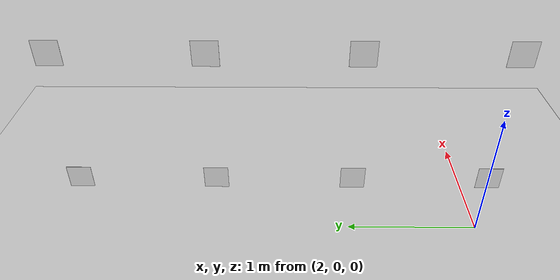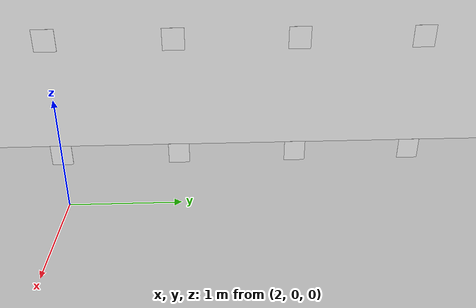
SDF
<?xml version="1.0" ?>
<sdf version="1.9">
  <world name="default">
    <physics name="1ms" type="ignored">
      <max_step_size>0.001</max_step_size>
      <real_time_factor>1.0</real_time_factor>
    </physics>

    <plugin filename="ignition-gazebo-physics-system" name="ignition::gazebo::systems::Physics"/>
    <plugin filename="ignition-gazebo-scene-broadcaster-system" name="ignition::gazebo::systems::SceneBroadcaster"/>
    <plugin filename="ignition-gazebo-user-commands-system" name="ignition::gazebo::systems::UserCommands"/>
    <plugin filename="ignition-gazebo-sensors-system" name="ignition::gazebo::systems::Sensors">
      <render_engine>ogre2</render_engine>
    </plugin>

    <light type="directional" name="sun">
      <cast_shadows>true</cast_shadows>
      <pose>0 0 10 0 0 0</pose>
      <diffuse>0.8 0.8 0.8 1</diffuse>
      <specular>0.2 0.2 0.2 1</specular>
      <direction>-0.5 0.1 -0.9</direction>
    </light>

    <model name="ground_plane">
      <static>true</static>
      <link name="link">
        <collision name="collision">
          <geometry><plane><normal>0 0 1</normal><size>100 100</size></plane></geometry>
        </collision>
        <visual name="visual">
          <geometry><plane><normal>0 0 1</normal><size>100 100</size></plane></geometry>
          <material>
            <ambient>0.8 0.8 0.8 1</ambient>
            <diffuse>0.8 0.8 0.8 1</diffuse>
            <specular>0.8 0.8 0.8 1</specular>
          </material>
        </visual>
      </link>
    </model>

    <!-- ArUco markers -->
    <model name="marker0">
      <include>
        <static>true</static>
        <uri>model://marker_0</uri>
      </include>
      <pose>2 0 0.5 0 -1.5707963267948966 0</pose>
    </model>
    <model name="marker1">
      <include>
        <static>true</static>
        <uri>model://marker_1</uri>
      </include>
      <pose>2 1 0.5 0 -1.5707963267948966 0</pose>
    </model>
    <model name="marker2">
      <include>
        <static>true</static>
        <uri>model://marker_2</uri>
      </include>
      <pose>2 2 0.5 0 -1.5707963267948966 0</pose>
    </model>
    <model name="marker3">
      <include>
        <static>true</static>
        <uri>model://marker_3</uri>
      </include>
      <pose>2 3 0.5 0 -1.5707963267948966 0</pose>
    </model>
    <model name="marker4">
      <include>
        <static>true</static>
        <uri>model://marker_4</uri>
      </include>
      <pose>2 0 1.5 0 -1.5707963267948966 0</pose>
    </model>
    <model name="marker5">
      <include>
        <static>true</static>
        <uri>model://marker_5</uri>
      </include>
      <pose>2 1 1.5 0 -1.5707963267948966 0</pose>
    </model>
    <model name="marker6">
      <include>
        <static>true</static>
        <uri>model://marker_6</uri>
      </include>
      <pose>2 2 1.5 0 -1.5707963267948966 0</pose>
    </model>
    <model name="marker7">
      <include>
        <static>true</static>
        <uri>model://marker_7</uri>
      </include>
      <pose>2 3 1.5 0 -1.5707963267948966 0</pose>
    </model>

  </world>
</sdf>

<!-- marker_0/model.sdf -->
<sdf version='1.5'>
  <model name='marker_0'>

    <link name='marker'>
      <pose frame=''>0 0 0 0 0 0</pose>
      <visual name='visual'>
        <geometry>
          <box>
            <size>0.1778 0.1778 1e-5</size>
          </box>
        </geometry>
        <material>
          <diffuse>1 1 1 1</diffuse><pbr><metal><albedo_map>model://marker_0/materials/textures/aruco_mark_0.png</albedo_map></metal></pbr>
          <ambient>1 1 1 1</ambient>
          <diffuse>1 1 1 1</diffuse>
          <specular>0 0 0 1</specular>
          <emissive>1 1 1 0</emissive>
          <shader type='vertex'>
            <normal_map>__default__</normal_map>
          </shader>
        </material>
        <pose frame=''>0 0 0 0 0 0</pose>
        <cast_shadows>1</cast_shadows>
        <transparency>0</transparency>
      </visual>
      <collision name='collision'>
        <laser_retro>0</laser_retro>
        <max_contacts>10</max_contacts>
        <pose frame=''>0 0 0 0 0 0</pose>
        <geometry>
          <box>
            <size>0.1778 0.1778 1e-05</size>
          </box>
        </geometry>
      </collision>
    </link>

    <link name='marker_pad'>
      <pose frame='marker'>0 0 -1e-3 0 0 0</pose>
      <visual name='visual'>
        <geometry>
          <box>
            <size>0.1778 0.1778 1e-5</size>
          </box>
        </geometry>
        <material>
          <lighting>1</lighting>
          <diffuse>1 1 1 1</diffuse><pbr><metal><albedo_map>model://marker_0/materials/textures/aruco_mark_0.png</albedo_map></metal></pbr>
          <ambient>0.3 0.3 0.3 1</ambient>
          <diffuse>0.7 0.7 0.7 1</diffuse>
          <specular>0.01 0.01 0.01 1</specular>
          <emissive>1 1 1 0</emissive>
          <shader type='vertex'>
            <normal_map>__default__</normal_map>
          </shader>
        </material>
        <cast_shadows>1</cast_shadows>
        <transparency>0</transparency>
      </visual>
      <collision name='collision'>
        <laser_retro>0</laser_retro>
        <max_contacts>10</max_contacts>
        <pose frame=''>0 0 0 0 0 0</pose>
        <geometry>
          <box>
            <size>0.1778 0.1778 1e-5</size>
          </box>
        </geometry>
      </collision>
    </link>

    <joint name='marker_JOINT_marker_pad' type='revolute'>
      <parent>marker</parent>
      <child>marker_pad</child>
      <pose frame=''>0 0 0 0 0 0</pose>
      <axis>
        <xyz>0 0 1</xyz>
        <limit>
          <upper>0</upper>
          <lower>0</lower>
        </limit>
      </axis>
    </joint>

    <static>1</static>
    <allow_auto_disable>1</allow_auto_disable>

  </model>
</sdf>

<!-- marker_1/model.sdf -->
<sdf version='1.5'>
  <model name='marker_1'>

    <link name='marker'>
      <pose frame=''>0 0 0 0 0 0</pose>
      <visual name='visual'>
        <geometry>
          <box>
            <size>0.1778 0.1778 1e-5</size>
          </box>
        </geometry>
        <material>
          <diffuse>1 1 1 1</diffuse><pbr><metal><albedo_map>model://marker_1/materials/textures/aruco_mark_1.png</albedo_map></metal></pbr>
          <ambient>1 1 1 1</ambient>
          <diffuse>1 1 1 1</diffuse>
          <specular>0 0 0 1</specular>
          <emissive>1 1 1 0</emissive>
          <shader type='vertex'>
            <normal_map>__default__</normal_map>
          </shader>
        </material>
        <pose frame=''>0 0 0 0 0 0</pose>
        <cast_shadows>1</cast_shadows>
        <transparency>0</transparency>
      </visual>
      <collision name='collision'>
        <laser_retro>0</laser_retro>
        <max_contacts>10</max_contacts>
        <pose frame=''>0 0 0 0 0 0</pose>
        <geometry>
          <box>
            <size>0.1778 0.1778 1e-05</size>
          </box>
        </geometry>
      </collision>
    </link>

    <link name='marker_pad'>
      <pose frame='marker'>0 0 -1e-3 0 0 0</pose>
      <visual name='visual'>
        <geometry>
          <box>
            <size>0.1778 0.1778 1e-5</size>
          </box>
        </geometry>
        <material>
          <lighting>1</lighting>
          <diffuse>1 1 1 1</diffuse><pbr><metal><albedo_map>model://marker_1/materials/textures/aruco_mark_1.png</albedo_map></metal></pbr>
          <ambient>0.3 0.3 0.3 1</ambient>
          <diffuse>0.7 0.7 0.7 1</diffuse>
          <specular>0.01 0.01 0.01 1</specular>
          <emissive>1 1 1 0</emissive>
          <shader type='vertex'>
            <normal_map>__default__</normal_map>
          </shader>
        </material>
        <cast_shadows>1</cast_shadows>
        <transparency>0</transparency>
      </visual>
      <collision name='collision'>
        <laser_retro>0</laser_retro>
        <max_contacts>10</max_contacts>
        <pose frame=''>0 0 0 0 0 0</pose>
        <geometry>
          <box>
            <size>0.1778 0.1778 1e-5</size>
          </box>
        </geometry>
      </collision>
    </link>

    <joint name='marker_JOINT_marker_pad' type='revolute'>
      <parent>marker</parent>
      <child>marker_pad</child>
      <pose frame=''>0 0 0 0 0 0</pose>
      <axis>
        <xyz>0 0 1</xyz>
        <limit>
          <upper>0</upper>
          <lower>0</lower>
        </limit>
      </axis>
    </joint>

    <static>1</static>
    <allow_auto_disable>1</allow_auto_disable>

  </model>
</sdf>

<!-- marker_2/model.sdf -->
<sdf version='1.5'>
  <model name='marker_2'>

    <link name='marker'>
      <pose frame=''>0 0 0 0 0 0</pose>
      <visual name='visual'>
        <geometry>
          <box>
            <size>0.1778 0.1778 1e-5</size>
          </box>
        </geometry>
        <material>
          <diffuse>1 1 1 1</diffuse><pbr><metal><albedo_map>model://marker_2/materials/textures/aruco_mark_2.png</albedo_map></metal></pbr>
          <ambient>1 1 1 1</ambient>
          <diffuse>1 1 1 1</diffuse>
          <specular>0 0 0 1</specular>
          <emissive>1 1 1 0</emissive>
          <shader type='vertex'>
            <normal_map>__default__</normal_map>
          </shader>
        </material>
        <pose frame=''>0 0 0 0 0 0</pose>
        <cast_shadows>1</cast_shadows>
        <transparency>0</transparency>
      </visual>
      <collision name='collision'>
        <laser_retro>0</laser_retro>
        <max_contacts>10</max_contacts>
        <pose frame=''>0 0 0 0 0 0</pose>
        <geometry>
          <box>
            <size>0.1778 0.1778 1e-05</size>
          </box>
        </geometry>
      </collision>
    </link>

    <link name='marker_pad'>
      <pose frame='marker'>0 0 -1e-3 0 0 0</pose>
      <visual name='visual'>
        <geometry>
          <box>
            <size>0.1778 0.1778 1e-5</size>
          </box>
        </geometry>
        <material>
          <lighting>1</lighting>
          <diffuse>1 1 1 1</diffuse><pbr><metal><albedo_map>model://marker_2/materials/textures/aruco_mark_2.png</albedo_map></metal></pbr>
          <ambient>0.3 0.3 0.3 1</ambient>
          <diffuse>0.7 0.7 0.7 1</diffuse>
          <specular>0.01 0.01 0.01 1</specular>
          <emissive>1 1 1 0</emissive>
          <shader type='vertex'>
            <normal_map>__default__</normal_map>
          </shader>
        </material>
        <cast_shadows>1</cast_shadows>
        <transparency>0</transparency>
      </visual>
      <collision name='collision'>
        <laser_retro>0</laser_retro>
        <max_contacts>10</max_contacts>
        <pose frame=''>0 0 0 0 0 0</pose>
        <geometry>
          <box>
            <size>0.1778 0.1778 1e-5</size>
          </box>
        </geometry>
      </collision>
    </link>

    <joint name='marker_JOINT_marker_pad' type='revolute'>
      <parent>marker</parent>
      <child>marker_pad</child>
      <pose frame=''>0 0 0 0 0 0</pose>
      <axis>
        <xyz>0 0 1</xyz>
        <limit>
          <upper>0</upper>
          <lower>0</lower>
        </limit>
      </axis>
    </joint>

    <static>1</static>
    <allow_auto_disable>1</allow_auto_disable>

  </model>
</sdf>

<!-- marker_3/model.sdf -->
<sdf version='1.5'>
  <model name='marker_3'>

    <link name='marker'>
      <pose frame=''>0 0 0 0 0 0</pose>
      <visual name='visual'>
        <geometry>
          <box>
            <size>0.1778 0.1778 1e-5</size>
          </box>
        </geometry>
        <material>
          <diffuse>1 1 1 1</diffuse><pbr><metal><albedo_map>model://marker_3/materials/textures/aruco_mark_3.png</albedo_map></metal></pbr>
          <ambient>1 1 1 1</ambient>
          <diffuse>1 1 1 1</diffuse>
          <specular>0 0 0 1</specular>
          <emissive>1 1 1 0</emissive>
          <shader type='vertex'>
            <normal_map>__default__</normal_map>
          </shader>
        </material>
        <pose frame=''>0 0 0 0 0 0</pose>
        <cast_shadows>1</cast_shadows>
        <transparency>0</transparency>
      </visual>
      <collision name='collision'>
        <laser_retro>0</laser_retro>
        <max_contacts>10</max_contacts>
        <pose frame=''>0 0 0 0 0 0</pose>
        <geometry>
          <box>
            <size>0.1778 0.1778 1e-05</size>
          </box>
        </geometry>
      </collision>
    </link>

    <link name='marker_pad'>
      <pose frame='marker'>0 0 -1e-3 0 0 0</pose>
      <visual name='visual'>
        <geometry>
          <box>
            <size>0.1778 0.1778 1e-5</size>
          </box>
        </geometry>
        <material>
          <lighting>1</lighting>
          <diffuse>1 1 1 1</diffuse><pbr><metal><albedo_map>model://marker_3/materials/textures/aruco_mark_3.png</albedo_map></metal></pbr>
          <ambient>0.3 0.3 0.3 1</ambient>
          <diffuse>0.7 0.7 0.7 1</diffuse>
          <specular>0.01 0.01 0.01 1</specular>
          <emissive>1 1 1 0</emissive>
          <shader type='vertex'>
            <normal_map>__default__</normal_map>
          </shader>
        </material>
        <cast_shadows>1</cast_shadows>
        <transparency>0</transparency>
      </visual>
      <collision name='collision'>
        <laser_retro>0</laser_retro>
        <max_contacts>10</max_contacts>
        <pose frame=''>0 0 0 0 0 0</pose>
        <geometry>
          <box>
            <size>0.1778 0.1778 1e-5</size>
          </box>
        </geometry>
      </collision>
    </link>

    <joint name='marker_JOINT_marker_pad' type='revolute'>
      <parent>marker</parent>
      <child>marker_pad</child>
      <pose frame=''>0 0 0 0 0 0</pose>
      <axis>
        <xyz>0 0 1</xyz>
        <limit>
          <upper>0</upper>
          <lower>0</lower>
        </limit>
      </axis>
    </joint>

    <static>1</static>
    <allow_auto_disable>1</allow_auto_disable>

  </model>
</sdf>

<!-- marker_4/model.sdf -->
<sdf version='1.5'>
  <model name='marker_4'>

    <link name='marker'>
      <pose frame=''>0 0 0 0 0 0</pose>
      <visual name='visual'>
        <geometry>
          <box>
            <size>0.1778 0.1778 1e-5</size>
          </box>
        </geometry>
        <material>
          <diffuse>1 1 1 1</diffuse><pbr><metal><albedo_map>model://marker_4/materials/textures/aruco_mark_4.png</albedo_map></metal></pbr>
          <ambient>1 1 1 1</ambient>
          <diffuse>1 1 1 1</diffuse>
          <specular>0 0 0 1</specular>
          <emissive>1 1 1 0</emissive>
          <shader type='vertex'>
            <normal_map>__default__</normal_map>
          </shader>
        </material>
        <pose frame=''>0 0 0 0 0 0</pose>
        <cast_shadows>1</cast_shadows>
        <transparency>0</transparency>
      </visual>
      <collision name='collision'>
        <laser_retro>0</laser_retro>
        <max_contacts>10</max_contacts>
        <pose frame=''>0 0 0 0 0 0</pose>
        <geometry>
          <box>
            <size>0.1778 0.1778 1e-05</size>
          </box>
        </geometry>
      </collision>
    </link>

    <link name='marker_pad'>
      <pose frame='marker'>0 0 -1e-3 0 0 0</pose>
      <visual name='visual'>
        <geometry>
          <box>
            <size>0.1778 0.1778 1e-5</size>
          </box>
        </geometry>
        <material>
          <lighting>1</lighting>
          <diffuse>1 1 1 1</diffuse><pbr><metal><albedo_map>model://marker_4/materials/textures/aruco_mark_4.png</albedo_map></metal></pbr>
          <ambient>0.3 0.3 0.3 1</ambient>
          <diffuse>0.7 0.7 0.7 1</diffuse>
          <specular>0.01 0.01 0.01 1</specular>
          <emissive>1 1 1 0</emissive>
          <shader type='vertex'>
            <normal_map>__default__</normal_map>
          </shader>
        </material>
        <cast_shadows>1</cast_shadows>
        <transparency>0</transparency>
      </visual>
      <collision name='collision'>
        <laser_retro>0</laser_retro>
        <max_contacts>10</max_contacts>
        <pose frame=''>0 0 0 0 0 0</pose>
        <geometry>
          <box>
            <size>0.1778 0.1778 1e-5</size>
          </box>
        </geometry>
      </collision>
    </link>

    <joint name='marker_JOINT_marker_pad' type='revolute'>
      <parent>marker</parent>
      <child>marker_pad</child>
      <pose frame=''>0 0 0 0 0 0</pose>
      <axis>
        <xyz>0 0 1</xyz>
        <limit>
          <upper>0</upper>
          <lower>0</lower>
        </limit>
      </axis>
    </joint>

    <static>1</static>
    <allow_auto_disable>1</allow_auto_disable>

  </model>
</sdf>

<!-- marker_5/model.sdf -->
<sdf version='1.5'>
  <model name='marker_5'>

    <link name='marker'>
      <pose frame=''>0 0 0 0 0 0</pose>
      <visual name='visual'>
        <geometry>
          <box>
            <size>0.1778 0.1778 1e-5</size>
          </box>
        </geometry>
        <material>
          <diffuse>1 1 1 1</diffuse><pbr><metal><albedo_map>model://marker_5/materials/textures/aruco_mark_5.png</albedo_map></metal></pbr>
          <ambient>1 1 1 1</ambient>
          <diffuse>1 1 1 1</diffuse>
          <specular>0 0 0 1</specular>
          <emissive>1 1 1 0</emissive>
          <shader type='vertex'>
            <normal_map>__default__</normal_map>
          </shader>
        </material>
        <pose frame=''>0 0 0 0 0 0</pose>
        <cast_shadows>1</cast_shadows>
        <transparency>0</transparency>
      </visual>
      <collision name='collision'>
        <laser_retro>0</laser_retro>
        <max_contacts>10</max_contacts>
        <pose frame=''>0 0 0 0 0 0</pose>
        <geometry>
          <box>
            <size>0.1778 0.1778 1e-05</size>
          </box>
        </geometry>
      </collision>
    </link>

    <link name='marker_pad'>
      <pose frame='marker'>0 0 -1e-3 0 0 0</pose>
      <visual name='visual'>
        <geometry>
          <box>
            <size>0.1778 0.1778 1e-5</size>
          </box>
        </geometry>
        <material>
          <lighting>1</lighting>
          <diffuse>1 1 1 1</diffuse><pbr><metal><albedo_map>model://marker_5/materials/textures/aruco_mark_5.png</albedo_map></metal></pbr>
          <ambient>0.3 0.3 0.3 1</ambient>
          <diffuse>0.7 0.7 0.7 1</diffuse>
          <specular>0.01 0.01 0.01 1</specular>
          <emissive>1 1 1 0</emissive>
          <shader type='vertex'>
            <normal_map>__default__</normal_map>
          </shader>
        </material>
        <cast_shadows>1</cast_shadows>
        <transparency>0</transparency>
      </visual>
      <collision name='collision'>
        <laser_retro>0</laser_retro>
        <max_contacts>10</max_contacts>
        <pose frame=''>0 0 0 0 0 0</pose>
        <geometry>
          <box>
            <size>0.1778 0.1778 1e-5</size>
          </box>
        </geometry>
      </collision>
    </link>

    <joint name='marker_JOINT_marker_pad' type='revolute'>
      <parent>marker</parent>
      <child>marker_pad</child>
      <pose frame=''>0 0 0 0 0 0</pose>
      <axis>
        <xyz>0 0 1</xyz>
        <limit>
          <upper>0</upper>
          <lower>0</lower>
        </limit>
      </axis>
    </joint>

    <static>1</static>
    <allow_auto_disable>1</allow_auto_disable>

  </model>
</sdf>

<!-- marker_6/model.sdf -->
<sdf version='1.5'>
  <model name='marker_6'>

    <link name='marker'>
      <pose frame=''>0 0 0 0 0 0</pose>
      <visual name='visual'>
        <geometry>
          <box>
            <size>0.1778 0.1778 1e-5</size>
          </box>
        </geometry>
        <material>
          <diffuse>1 1 1 1</diffuse><pbr><metal><albedo_map>model://marker_6/materials/textures/aruco_mark_6.png</albedo_map></metal></pbr>
          <ambient>1 1 1 1</ambient>
          <diffuse>1 1 1 1</diffuse>
          <specular>0 0 0 1</specular>
          <emissive>1 1 1 0</emissive>
          <shader type='vertex'>
            <normal_map>__default__</normal_map>
          </shader>
        </material>
        <pose frame=''>0 0 0 0 0 0</pose>
        <cast_shadows>1</cast_shadows>
        <transparency>0</transparency>
      </visual>
      <collision name='collision'>
        <laser_retro>0</laser_retro>
        <max_contacts>10</max_contacts>
        <pose frame=''>0 0 0 0 0 0</pose>
        <geometry>
          <box>
            <size>0.1778 0.1778 1e-05</size>
          </box>
        </geometry>
      </collision>
    </link>

    <link name='marker_pad'>
      <pose frame='marker'>0 0 -1e-3 0 0 0</pose>
      <visual name='visual'>
        <geometry>
          <box>
            <size>0.1778 0.1778 1e-5</size>
          </box>
        </geometry>
        <material>
          <lighting>1</lighting>
          <diffuse>1 1 1 1</diffuse><pbr><metal><albedo_map>model://marker_6/materials/textures/aruco_mark_6.png</albedo_map></metal></pbr>
          <ambient>0.3 0.3 0.3 1</ambient>
          <diffuse>0.7 0.7 0.7 1</diffuse>
          <specular>0.01 0.01 0.01 1</specular>
          <emissive>1 1 1 0</emissive>
          <shader type='vertex'>
            <normal_map>__default__</normal_map>
          </shader>
        </material>
        <cast_shadows>1</cast_shadows>
        <transparency>0</transparency>
      </visual>
      <collision name='collision'>
        <laser_retro>0</laser_retro>
        <max_contacts>10</max_contacts>
        <pose frame=''>0 0 0 0 0 0</pose>
        <geometry>
          <box>
            <size>0.1778 0.1778 1e-5</size>
          </box>
        </geometry>
      </collision>
    </link>

    <joint name='marker_JOINT_marker_pad' type='revolute'>
      <parent>marker</parent>
      <child>marker_pad</child>
      <pose frame=''>0 0 0 0 0 0</pose>
      <axis>
        <xyz>0 0 1</xyz>
        <limit>
          <upper>0</upper>
          <lower>0</lower>
        </limit>
      </axis>
    </joint>

    <static>1</static>
    <allow_auto_disable>1</allow_auto_disable>

  </model>
</sdf>

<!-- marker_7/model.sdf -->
<sdf version='1.5'>
  <model name='marker_7'>

    <link name='marker'>
      <pose frame=''>0 0 0 0 0 0</pose>
      <visual name='visual'>
        <geometry>
          <box>
            <size>0.1778 0.1778 1e-5</size>
          </box>
        </geometry>
        <material>
          <diffuse>1 1 1 1</diffuse><pbr><metal><albedo_map>model://marker_7/materials/textures/aruco_mark_7.png</albedo_map></metal></pbr>
          <ambient>1 1 1 1</ambient>
          <diffuse>1 1 1 1</diffuse>
          <specular>0 0 0 1</specular>
          <emissive>1 1 1 0</emissive>
          <shader type='vertex'>
            <normal_map>__default__</normal_map>
          </shader>
        </material>
        <pose frame=''>0 0 0 0 0 0</pose>
        <cast_shadows>1</cast_shadows>
        <transparency>0</transparency>
      </visual>
      <collision name='collision'>
        <laser_retro>0</laser_retro>
        <max_contacts>10</max_contacts>
        <pose frame=''>0 0 0 0 0 0</pose>
        <geometry>
          <box>
            <size>0.1778 0.1778 1e-05</size>
          </box>
        </geometry>
      </collision>
    </link>

    <link name='marker_pad'>
      <pose frame='marker'>0 0 -1e-3 0 0 0</pose>
      <visual name='visual'>
        <geometry>
          <box>
            <size>0.1778 0.1778 1e-5</size>
          </box>
        </geometry>
        <material>
          <lighting>1</lighting>
          <diffuse>1 1 1 1</diffuse><pbr><metal><albedo_map>model://marker_7/materials/textures/aruco_mark_7.png</albedo_map></metal></pbr>
          <ambient>0.3 0.3 0.3 1</ambient>
          <diffuse>0.7 0.7 0.7 1</diffuse>
          <specular>0.01 0.01 0.01 1</specular>
          <emissive>1 1 1 0</emissive>
          <shader type='vertex'>
            <normal_map>__default__</normal_map>
          </shader>
        </material>
        <cast_shadows>1</cast_shadows>
        <transparency>0</transparency>
      </visual>
      <collision name='collision'>
        <laser_retro>0</laser_retro>
        <max_contacts>10</max_contacts>
        <pose frame=''>0 0 0 0 0 0</pose>
        <geometry>
          <box>
            <size>0.1778 0.1778 1e-5</size>
          </box>
        </geometry>
      </collision>
    </link>

    <joint name='marker_JOINT_marker_pad' type='revolute'>
      <parent>marker</parent>
      <child>marker_pad</child>
      <pose frame=''>0 0 0 0 0 0</pose>
      <axis>
        <xyz>0 0 1</xyz>
        <limit>
          <upper>0</upper>
          <lower>0</lower>
        </limit>
      </axis>
    </joint>

    <static>1</static>
    <allow_auto_disable>1</allow_auto_disable>

  </model>
</sdf>
